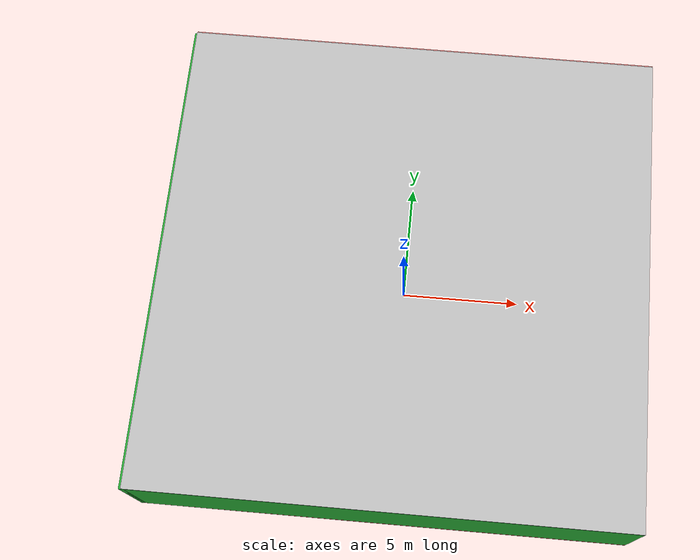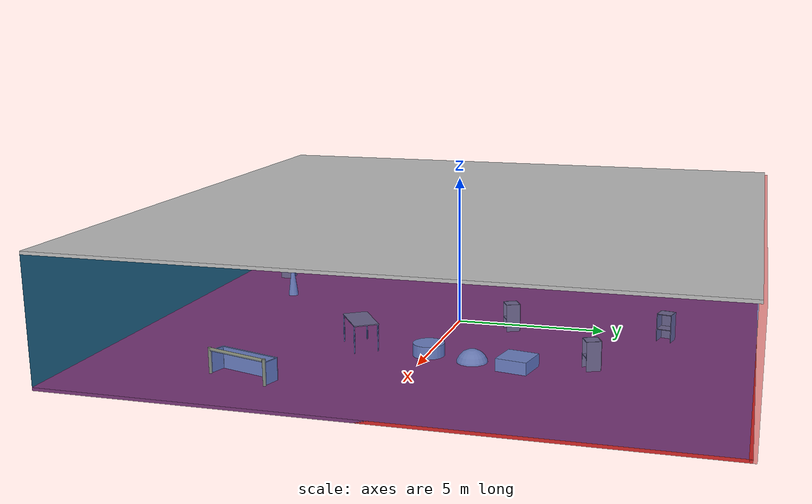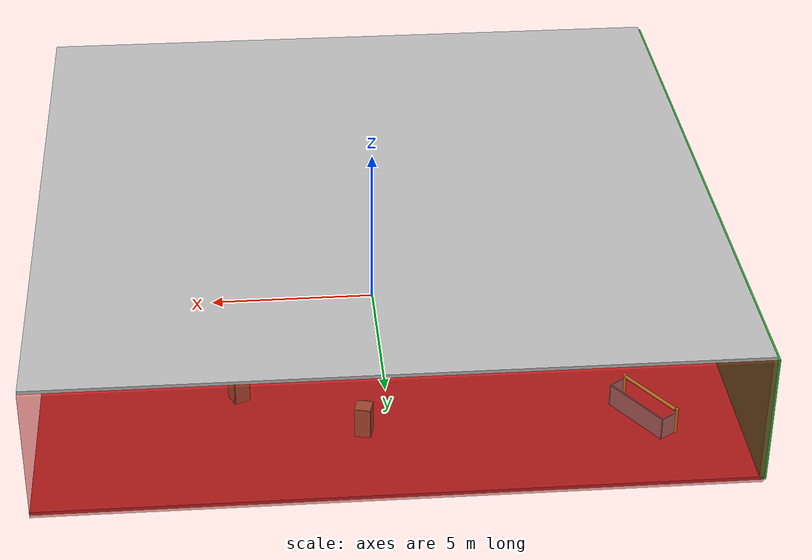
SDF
<sdf version="1.4">
 <world name="default">
  <physics type="ode">
   <max_step_size>0.001</max_step_size>
   <real_time_factor>1</real_time_factor>
   <real_time_update_rate>1000</real_time_update_rate>
   <gravity>0 0 -9.8</gravity>
  </physics>
  <scene><ambient>0.4 0.4 0.4 1</ambient><background>0.7 0.7 0.7 1</background><shadows>1</shadows></scene>
  <model name="Surrounding">
   <static>1</static>
   <link name="Ceiling">
    <collision name="Ceiling_Collision"><geometry><box><size>20 20 0.1</size></box></geometry></collision>
    <visual name="Ceiling_Visual">
     <geometry><box><size>20 20 0.1</size></box></geometry>
     <material>
      <script><uri>file://media/materials/scripts/gazebo.material</uri><name>Gazebo/Pioneer2Body</name></script>
     </material>
    </visual>
    <pose>0 0 4.05 0 0 0</pose>
   </link>
   <link name="Wall_South">
    <collision name="Wall_South_Collision">
     <geometry><box><size>20 0 4</size></box></geometry>
     <pose>0 0 2 0 -0 0</pose>
    </collision>
    <visual name="Wall_South_Visual">
     <pose>0 0 2 0 -0 0</pose>
     <geometry><box><size>20 0 4</size></box></geometry>
     <material>
      <script><uri>file://media/materials/scripts/gazebo.material</uri><name>Gazebo/GreenGlow</name></script>
     </material>
    </visual>
    <velocity_decay><linear>0</linear><angular>0</angular></velocity_decay>
    <pose>0 -10 0 0 -0 0</pose>
   </link>
   <link name="Wall_East">
    <collision name="Wall_21_Collision">
     <geometry><box><size>20 0 4</size></box></geometry>
     <pose>0 0 2 0 -0 0</pose>
    </collision>
    <visual name="Wall_21_Visual">
     <pose>0 0 2 0 -0 0</pose>
     <geometry><box><size>20 0 4</size></box></geometry>
     <material>
      <script><uri>file://media/materials/scripts/gazebo.material</uri><name>Gazebo/BlueTransparent</name></script>
     </material>
    </visual>
    <velocity_decay><linear>0</linear><angular>0</angular></velocity_decay>
    <pose>10 0 0 0 -0 1.5708</pose>
   </link>
   <link name="Wall_North">
    <collision name="Wall_22_Collision">
     <geometry><box><size>20 0.2 4</size></box></geometry>
     <pose>0 0 2 0 -0 0</pose>
    </collision>
    <visual name="Wall_22_Visual">
     <pose>0 0 2 0 -0 0</pose>
     <geometry><box><size>20 0.2 4</size></box></geometry>
     <material>
      <script><uri>file://media/materials/scripts/gazebo.material</uri><name>Gazebo/RedTransparent</name></script>
     </material>
    </visual>
    <velocity_decay><linear>0</linear><angular>0</angular></velocity_decay>
    <pose>0 10 0 0 -0 0</pose>
   </link>
   <link name="Wall_West">
    <collision name="Wall_23_Collision">
     <geometry><box><size>20 0.2 4</size></box></geometry>
     <pose>0 0 2 0 -0 0</pose>
    </collision>
    <visual name="Wall_23_Visual">
     <pose>0 0 2 0 -0 0</pose>
     <geometry><box><size>20 0.2 4</size></box></geometry>
     <material>
      <script><uri>file://media/materials/scripts/gazebo.material</uri><name>Gazebo/GreenGlow</name></script>
     </material>
    </visual>
    <velocity_decay><linear>0</linear><angular>0</angular></velocity_decay>
    <pose>-10 0 0 0 0 -1.5708</pose>
   </link>
   <link name="Ground_link">
    <collision name="collision">
     <pose>0 0 .05 0 -0 0</pose>
     <geometry><box><size>20 20 0.1</size></box></geometry>
    </collision>
    <visual name="visual">
     <pose>0 0 .05 0 -0 0</pose>
     <geometry><box><size>20 20 0.1</size></box></geometry>
     <material>
      <script><uri>file://media/materials/scripts/gazebo.material</uri><name>Gazebo/Red</name></script>
     </material>
    </visual>
   </link>
   <static>1</static>
  </model>
  <spherical_coordinates>
   <surface_model>EARTH_WGS84</surface_model>
   <latitude_deg>0</latitude_deg>
   <longitude_deg>0</longitude_deg>
   <elevation>0</elevation>
   <heading_deg>0</heading_deg>
  </spherical_coordinates>
  <light name="lightball_0" type="diffuse">
   <diffuse>0.8 0.8 0.8 1</diffuse>
   <specular>0.2 0.2 0.2 1</specular>
   <attenuation>
    <range>100</range>
    <constant>0.7</constant>
    <linear>0.01</linear>
    <quadratic>0.001</quadratic>
   </attenuation>
   <direction>-0.5 0.1 -0.9</direction>
   <pose>7.10449277864 2.70223385265 0.726080668567 0 0 0</pose>
  </light>
  <light name="lightball_1" type="diffuse">
   <diffuse>0.8 0.8 0.8 1</diffuse>
   <specular>0.2 0.2 0.2 1</specular>
   <attenuation>
    <range>100</range>
    <constant>0.7</constant>
    <linear>0.01</linear>
    <quadratic>0.001</quadratic>
   </attenuation>
   <direction>-0.5 0.1 -0.9</direction>
   <pose>-8.22732671187 -4.50084197256 3.12336545645 0 0 0</pose>
  </light>
  <light name="lightball_2" type="diffuse">
   <diffuse>0.8 0.8 0.8 1</diffuse>
   <specular>0.2 0.2 0.2 1</specular>
   <attenuation>
    <range>100</range>
    <constant>0.7</constant>
    <linear>0.01</linear>
    <quadratic>0.001</quadratic>
   </attenuation>
   <direction>-0.5 0.1 -0.9</direction>
   <pose>2.96762845135 3.1983005999 3.4917947381 0 0 0</pose>
  </light>
  <light name="lightball_3" type="diffuse">
   <diffuse>0.8 0.8 0.8 1</diffuse>
   <specular>0.2 0.2 0.2 1</specular>
   <attenuation>
    <range>100</range>
    <constant>0.7</constant>
    <linear>0.01</linear>
    <quadratic>0.001</quadratic>
   </attenuation>
   <direction>-0.5 0.1 -0.9</direction>
   <pose>-5.46132399898 2.83840374604 3.4692836711 0 0 0</pose>
  </light>
  <light name="lightball_4" type="diffuse">
   <diffuse>0.8 0.8 0.8 1</diffuse>
   <specular>0.2 0.2 0.2 1</specular>
   <attenuation>
    <range>100</range>
    <constant>0.7</constant>
    <linear>0.01</linear>
    <quadratic>0.001</quadratic>
   </attenuation>
   <direction>-0.5 0.1 -0.9</direction>
   <pose>-0.771886709888 -5.32056299061 1.309485698 0 0 0</pose>
  </light>
  <light name="lightball_5" type="diffuse">
   <diffuse>0.8 0.8 0.8 1</diffuse>
   <specular>0.2 0.2 0.2 1</specular>
   <attenuation>
    <range>100</range>
    <constant>0.7</constant>
    <linear>0.01</linear>
    <quadratic>0.001</quadratic>
   </attenuation>
   <direction>-0.5 0.1 -0.9</direction>
   <pose>8.23537288631 -5.06832515721 3.71305792291 0 0 0</pose>
  </light>
  <light name="lightball_6" type="diffuse">
   <diffuse>0.8 0.8 0.8 1</diffuse>
   <specular>0.2 0.2 0.2 1</specular>
   <attenuation>
    <range>100</range>
    <constant>0.7</constant>
    <linear>0.01</linear>
    <quadratic>0.001</quadratic>
   </attenuation>
   <direction>-0.5 0.1 -0.9</direction>
   <pose>7.04372313032 -5.33193953957 2.60777045565 0 0 0</pose>
  </light>
  <include>
   <uri>model://construction_cone</uri>
   <pose>-8.15467688283 -6.73667086 0 0 0 1.92463062166</pose>
  </include>
  <include>
   <uri>model://textured_shapes</uri>
   <pose>-8.03837268109 -3.8044823952 0 0 0 0.0426519600063</pose>
  </include>
  <include>
   <uri>model://robocup_3Dsim_goal</uri>
   <pose>-7.41877978516 6.92505194974 0 0 0 0.583380978979</pose>
  </include>
  <include><uri>model://cabinet</uri><pose>-3.97257215995 -8.11064330953 0 0 0 1.62929238219</pose></include>
  <include><uri>model://cabinet</uri><pose>-5.04085827022 -1.63940954382 0 0 0 1.95110653145</pose></include>
  <include>
   <uri>model://construction_cone</uri>
   <pose>-1.4266903771 -6.83148236206 0 0 0 0.541593860421</pose>
  </include>
  <include><uri>model://cabinet</uri><pose>0.876137278302 2.02507793625 0 0 0 2.02816598291</pose></include>
  <include><uri>model://cabinet</uri><pose>0.792809342509 7.1260710454 0 0 0 2.89077302552</pose></include>
  <include><uri>model://table</uri><pose>3.9201200227 -2.2213863612 0 0 0 0.59685241344</pose></include>
  <include>
   <uri>model://textured_shapes</uri>
   <pose>4.52000332645 1.59446649865 0 0 0 2.94188149871</pose>
  </include>
  <include><uri>model://cabinet</uri><pose>4.26774361977 5.21857394984 0 0 0 1.99104820673</pose></include>
  <include>
   <uri>model://robocup_3Dsim_goal</uri>
   <pose>7.8507366289 -4.63353463169 0 0 0 2.84739623629</pose>
  </include>
 </world>
</sdf>

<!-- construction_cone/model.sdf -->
<sdf version="1.5">
  <model name="Construction Cone">
    <link name="link">
      <collision name="collision">
        <geometry>
          <mesh>
            <scale>10 10 10</scale>
            <uri>file://isr-testbed/construction_cone/meshes/construction_cone.dae</uri>
          </mesh>
        </geometry>
      </collision>
      <visual name="visual">
        <geometry>
          <mesh>
            <scale>10 10 10</scale>
            <uri>file://isr-testbed/construction_cone/meshes/construction_cone.dae</uri>
          </mesh>
        </geometry>
      </visual>
    </link>
  </model>
</sdf>

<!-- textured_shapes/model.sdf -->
<sdf version="1.6">
  <model name="textured_shapes">
    <pose>0 0 0.5 0 0 0</pose>
    <link name="box">
      <pose>0 -1.5 0 0 0 0</pose>
      <collision name="collision">
        <geometry>
          <box>
            <size>1 1 1</size>
          </box>
        </geometry>
      </collision>
      <visual name="visual">
        <geometry>
          <box>
            <size>1 1 1</size>
          </box>
        </geometry>
        <material>
          <script>
            <uri>model://../model_source/models/textured_shapes/materials/scripts</uri>
            <uri>model://../model_source/models/textured_shapes/materials/textures</uri>
            <name>TexturedShape/Squares</name>
          </script>
        </material>
      </visual>
    </link>
    <link name="sphere">
      <collision name="collision">
        <geometry>
          <sphere>
            <radius>0.5</radius>
          </sphere>
        </geometry>
      </collision>
      <visual name="visual">
        <geometry>
          <sphere>
            <radius>0.5</radius>
          </sphere>
        </geometry>
        <material>
          <script>
            <uri>model://../model_source/models/textured_shapes/materials/scripts</uri>
            <uri>model://../model_source/models/textured_shapes/materials/textures</uri>
            <name>TexturedShape/Squares</name>
          </script>
        </material>
      </visual>
    </link>
    <link name="cylinder">
      <pose>0 1.5 0 0 0 0</pose>
      <collision name="collision">
        <geometry>
          <cylinder>
            <radius>0.5</radius>
            <length>1</length>
          </cylinder>
        </geometry>
      </collision>
      <visual name="visual">
        <geometry>
          <cylinder>
            <radius>0.5</radius>
            <length>1</length>
          </cylinder>
        </geometry>
        <material>
          <script>
            <uri>model://../model_source/models/textured_shapes/materials/scripts</uri>
            <uri>model://../model_source/models/textured_shapes/materials/textures</uri>
            <name>TexturedShape/Squares</name>
          </script>
        </material>
      </visual>
    </link>
  </model>
</sdf>

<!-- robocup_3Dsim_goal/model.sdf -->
<sdf version="1.5">
  <model name="robocup_3d_goal">
    <static>true</static>
    <link name="left_post">
      <pose>0 1.05 0.45 0 0 0</pose>
      <collision name="collision">
        <geometry>
          <cylinder>
            <radius>0.05</radius>
            <length>0.9</length>
          </cylinder>
        </geometry>
      </collision>
      <visual name="visual">
        <geometry>
          <cylinder>
            <radius>0.05</radius>
            <length>0.9</length>
          </cylinder>
        </geometry>
        <material>
          <script>
            <uri>file://media/materials/scripts/gazebo.material</uri>
            <name>Gazebo/ZincYellow</name>
          </script>
        </material>
      </visual>
    </link>
    <link name="left_support_horiz_lower">
      <pose>0.30 1.05 0.01 0 0 0</pose>
      <collision name="collision">
        <geometry>
          <box>
            <size>0.50 0.02 0.02</size>
          </box>
        </geometry>
      </collision>
      <visual name="visual">
        <geometry>
          <box>
            <size>0.50 0.02 0.02</size>
          </box>
        </geometry>
        <material>
          <script>
            <uri>file://media/materials/scripts/gazebo.material</uri>
            <name>Gazebo/White</name>
          </script>
        </material>
      </visual>
    </link>
    <link name="left_support_horiz_upper">
      <pose>0.30 1.05 0.79 0 0 0</pose>
      <collision name="collision">
        <geometry>
          <box>
            <size>0.50 0.02 0.02</size>
          </box>
        </geometry>
      </collision>
      <visual name="visual">
        <geometry>
          <box>
            <size>0.50 0.02 0.02</size>
          </box>
        </geometry>
        <material>
          <script>
            <uri>file://media/materials/scripts/gazebo.material</uri>
            <name>Gazebo/White</name>
          </script>
        </material>
      </visual>
    </link>
    <link name="left_support_vertical">
      <pose>0.56 1.05 0.4 0 1.5708 0</pose>
      <collision name="collision">
        <geometry>
          <box>
            <size>0.80 0.02 0.02</size>
          </box>
        </geometry>
      </collision>
      <visual name="visual">
        <geometry>
          <box>
            <size>0.80 0.02 0.02</size>
          </box>
        </geometry>
        <material>
          <script>
            <uri>file://media/materials/scripts/gazebo.material</uri>
            <name>Gazebo/White</name>
          </script>
        </material>
      </visual>
    </link>
    <link name="right_support_horiz_lower">
      <pose>0.30 -1.05 0.01 0 0 0</pose>
      <collision name="collision">
        <geometry>
          <box>
            <size>0.50 0.02 0.02</size>
          </box>
        </geometry>
      </collision>
      <visual name="visual">
        <geometry>
          <box>
            <size>0.50 0.02 0.02</size>
          </box>
        </geometry>
        <material>
          <script>
            <uri>file://media/materials/scripts/gazebo.material</uri>
            <name>Gazebo/White</name>
          </script>
        </material>
      </visual>
    </link>
    <link name="right_support_horiz_upper">
      <pose>0.30 -1.05 0.79 0 0 0</pose>
      <collision name="collision">
        <geometry>
          <box>
            <size>0.50 0.02 0.02</size>
          </box>
        </geometry>
      </collision>
      <visual name="visual">
        <geometry>
          <box>
            <size>0.50 0.02 0.02</size>
          </box>
        </geometry>
        <material>
          <script>
            <uri>file://media/materials/scripts/gazebo.material</uri>
            <name>Gazebo/White</name>
          </script>
        </material>
      </visual>
    </link>
    <link name="right_support_vertical">
      <pose>0.56 -1.05 0.4 0 1.5708 0</pose>
      <collision name="collision">
        <geometry>
          <box>
            <size>0.80 0.02 0.02</size>
          </box>
        </geometry>
      </collision>
      <visual name="visual">
        <geometry>
          <box>
            <size>0.80 0.02 0.02</size>
          </box>
        </geometry>
        <material>
          <script>
            <uri>file://media/materials/scripts/gazebo.material</uri>
            <name>Gazebo/White</name>
          </script>
        </material>
      </visual>
    </link>
    <link name="center_support_horiz_lower">
      <pose>0.56 0 0.01 0 1.5708 0</pose>
      <collision name="collision">
        <geometry>
          <box>
            <size>0.02 2.08 0.02</size>
          </box>
        </geometry>
      </collision>
      <visual name="visual">
        <geometry>
          <box>
            <size>0.02 2.08 0.02</size>
          </box>
        </geometry>
        <material>
          <script>
            <uri>file://media/materials/scripts/gazebo.material</uri>
            <name>Gazebo/White</name>
          </script>
        </material>
      </visual>
    </link>
    <link name="center_support_horiz_upper">
      <pose>0.56 0 0.79 0 1.5708 0</pose>
      <collision name="collision">
        <geometry>
          <box>
            <size>0.02 2.08 0.02</size>
          </box>
        </geometry>
      </collision>
      <visual name="visual">
        <geometry>
          <box>
            <size>0.02 2.08 0.02</size>
          </box>
        </geometry>
        <material>
          <script>
            <uri>file://media/materials/scripts/gazebo.material</uri>
            <name>Gazebo/White</name>
          </script>
        </material>
      </visual>
    </link>
    <link name="right_post">
      <pose>0 -1.05 0.45 0 0 0</pose>
      <collision name="collision">
        <geometry>
          <cylinder>
            <radius>0.05</radius>
            <length>0.9</length>
          </cylinder>
        </geometry>
      </collision>
      <visual name="visual">
        <geometry>
          <cylinder>
            <radius>0.05</radius>
            <length>0.9</length>
          </cylinder>
        </geometry>
        <material>
          <script>
            <uri>file://media/materials/scripts/gazebo.material</uri>
            <name>Gazebo/ZincYellow</name>
          </script>
        </material>
      </visual>
    </link>
    <link name="crossbar">
      <pose>0 0 0.85 1.57 1.57 0</pose>
      <collision name="collision">
        <geometry>
          <cylinder>
            <radius>0.05</radius>
            <length>2.0</length>
          </cylinder>
        </geometry>
      </collision>
      <visual name="visual">
        <geometry>
          <cylinder>
            <radius>0.05</radius>
            <length>2.0</length>
          </cylinder>
        </geometry>
        <material>
          <script>
            <uri>file://media/materials/scripts/gazebo.material</uri>
            <name>Gazebo/ZincYellow</name>
          </script>
        </material>
      </visual>
    </link>
    <link name="center_net">
      <pose>0.56 0 0.40 0 0 0</pose>
      <collision name="collision">
        <geometry>
          <box>
            <size>0.01 2.1 0.80</size>
          </box>
        </geometry>
      </collision>
      <visual name="visual">
        <geometry>
          <box>
            <size>0.01 2.1 0.80</size>
          </box>
        </geometry>
        <material>
          <script>
            <uri>model://../model_source/models/robocup09_spl_field/materials/scripts/</uri>
            <uri>model://../model_source/models/robocup09_spl_field/materials/textures/</uri>
            <name>RoboCup/Net</name>
          </script>
        </material>
      </visual>
    </link>
    <link name="left_net">
      <pose>0.30 1.05 0.40 0 0 0</pose>
      <collision name="collision">
        <geometry>
          <box>
            <size>0.50 0.01 0.76</size>
          </box>
        </geometry>
      </collision>
      <visual name="visual">
        <geometry>
          <box>
            <size>0.50 0.01 0.76</size>
          </box>
        </geometry>
        <material>
          <script>
            <uri>model://../model_source/models/robocup09_spl_field/materials/scripts/</uri>
            <uri>model://../model_source/models/robocup09_spl_field/materials/textures/</uri>
            <name>RoboCup/Net</name>
          </script>
        </material>
      </visual>
    </link>
    <link name="right_net">
      <pose>0.30 -1.05 0.40 0 0 0</pose>
      <collision name="collision">
        <geometry>
          <box>
            <size>0.50 0.01 0.76</size>
          </box>
        </geometry>
      </collision>
      <visual name="visual">
        <geometry>
          <box>
            <size>0.50 0.01 0.76</size>
          </box>
        </geometry>
        <material>
          <script>
            <uri>model://../model_source/models/robocup09_spl_field/materials/scripts/</uri>
            <uri>model://../model_source/models/robocup09_spl_field/materials/textures/</uri>
            <name>RoboCup/Net</name>
          </script>
        </material>
      </visual>
    </link>
  </model>
</sdf>

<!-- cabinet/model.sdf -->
<sdf version="1.5">
  <model name="cabinet">
    <static>true</static>
    <link name="cabinet_bottom_plate">
      <inertial>
        <pose>0 0 -1 0 0 0</pose>
        <inertia>
          <ixx>2.050000</ixx>
          <ixy>0</ixy>
          <ixz>0</ixz>
          <iyy>2.050000</iyy>
          <iyz>0</iyz>
          <izz>2.050000</izz>
        </inertia>
        <mass>25.000000</mass>
      </inertial>
      <collision name="cabinet_bottom_plate_geom">
        <pose>0 0 0.010000 0 0 0</pose>
        <geometry>
          <box>
            <size>0.450000 0.450000 0.020000</size>
          </box>
        </geometry>
      </collision>
      <visual name="cabinet_bottom_plate_geom_visual">
        <pose>0 0 0.010000 0 0 0</pose>
        <geometry>
          <box>
            <size>0.450000 0.450000 0.020000</size>
          </box>
        </geometry>
        <material>
          <script>
            <uri>model://media/materials/scripts/gazebo.material</uri>
            <name>Gazebo/Wood</name>
          </script>
        </material>
      </visual>
      <collision name="cabinet_bottom_plate_geom_cabinet_back_plate">
        <pose>0.235000 0 0.510000 0 0 0</pose>
        <geometry>
          <box>
            <size>0.020000 0.450000 1.020000</size>
          </box>
        </geometry>
      </collision>
      <visual name="cabinet_bottom_plate_geom_cabinet_back_plate_visual">
        <pose>0.235000 0 0.510000 0 0 0</pose>
        <geometry>
          <box>
            <size>0.020000 0.450000 1.020000</size>
          </box>
        </geometry>
        <material>
          <script>
            <uri>model://media/materials/scripts/gazebo.material</uri>
            <name>Gazebo/Wood</name>
          </script>
        </material>
      </visual>
      <collision name="cabinet_bottom_plate_geom_cabinet_left_plate">
        <pose>0 0.235000 0.510000 0 0 0</pose>
        <geometry>
          <box>
            <size>0.450000 0.020000 1.020000</size>
          </box>
        </geometry>
      </collision>
      <visual name="cabinet_bottom_plate_geom_cabinet_left_plate_visual">
        <pose>0 0.235000 0.510000 0 0 0</pose>
        <geometry>
          <box>
            <size>0.450000 0.020000 1.020000</size>
          </box>
        </geometry>
        <material>
          <script>
            <uri>model://media/materials/scripts/gazebo.material</uri>
            <name>Gazebo/Wood</name>
          </script>
        </material>
      </visual>
      <collision name="cabinet_bottom_plate_geom_cabinet_middle_plate">
        <pose>0 0 0.510000 0 0 0</pose>
        <geometry>
          <box>
            <size>0.450000 0.450000 0.020000</size>
          </box>
        </geometry>
      </collision>
      <visual name="cabinet_bottom_plate_geom_cabinet_middle_plate_visual">
        <pose>0 0 0.510000 0 0 0</pose>
        <geometry>
          <box>
            <size>0.450000 0.450000 0.020000</size>
          </box>
        </geometry>
        <material>
          <script>
            <uri>model://media/materials/scripts/gazebo.material</uri>
            <name>Gazebo/Wood</name>
          </script>
        </material>
      </visual>
      <collision name="cabinet_bottom_plate_geom_cabinet_right_plate">
        <pose>0 -0.235000 0.510000 0 0 0</pose>
        <geometry>
          <box>
            <size>0.450000 0.020000 1.020000</size>
          </box>
        </geometry>
      </collision>
      <visual name="cabinet_bottom_plate_geom_cabinet_right_plate_visual">
        <pose>0 -0.235000 0.510000 0 0 0</pose>
        <geometry>
          <box>
            <size>0.450000 0.020000 1.020000</size>
          </box>
        </geometry>
        <material>
          <script>
            <uri>model://media/materials/scripts/gazebo.material</uri>
            <name>Gazebo/Wood</name>
          </script>
        </material>
      </visual>
      <collision name="cabinet_bottom_plate_geom_cabinet_top_plate">
        <pose>0 0 1.010000 0 0 0</pose>
        <geometry>
          <box>
            <size>0.450000 0.450000 0.020000</size>
          </box>
        </geometry>
      </collision>
      <visual name="cabinet_bottom_plate_geom_cabinet_top_plate_visual">
        <pose>0 0 1.010000 0 0 0</pose>
        <geometry>
          <box>
            <size>0.450000 0.450000 0.020000</size>
          </box>
        </geometry>
        <material>
          <script>
            <uri>model://media/materials/scripts/gazebo.material</uri>
            <name>Gazebo/Wood</name>
          </script>
        </material>
      </visual>
    </link>
  </model>
</sdf>

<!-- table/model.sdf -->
<sdf version="1.5">
  <model name="table">
    <static>true</static>
    <link name="link">
      <collision name="surface">
        <pose>0 0 1.0 0 0 0</pose>
        <geometry>
          <box>
            <size>1.5 0.8 0.03</size>
          </box>
        </geometry>
        <surface>
          <friction>
            <ode>
              <mu>0.6</mu>
              <mu2>0.6</mu2>
            </ode>
          </friction>
        </surface>
      </collision>
      <visual name="visual1">
        <pose>0 0 1.0 0 0 0</pose>
        <geometry>
          <box>
            <size>1.5 0.8 0.03</size>
          </box>
        </geometry>
        <material>
          <script>
            <uri>model://media/materials/scripts/gazebo.material</uri>
            <name>Gazebo/Wood</name>
          </script>
        </material>
      </visual>
      <collision name="front_left_leg">
        <pose>0.68 0.38 0.5 0 0 0</pose>
        <geometry>
          <cylinder>
            <radius>0.02</radius>
            <length>1.0</length>
          </cylinder>
        </geometry>
      </collision>
      <visual name="front_left_leg">
        <pose>0.68 0.38 0.5 0 0 0</pose>
        <geometry>
          <cylinder>
            <radius>0.02</radius>
            <length>1.0</length>
          </cylinder>
        </geometry>
        <material>
          <script>
            <uri>model://media/materials/scripts/gazebo.material</uri>
            <name>Gazebo/Grey</name>
          </script>
        </material>
      </visual>
      <collision name="front_right_leg">
        <pose>0.68 -0.38 0.5 0 0 0</pose>
        <geometry>
          <cylinder>
            <radius>0.02</radius>
            <length>1.0</length>
          </cylinder>
        </geometry>
      </collision>
      <visual name="front_right_leg">
        <pose>0.68 -0.38 0.5 0 0 0</pose>
        <geometry>
          <cylinder>
            <radius>0.02</radius>
            <length>1.0</length>
          </cylinder>
        </geometry>
        <material>
          <script>
            <uri>model://media/materials/scripts/gazebo.material</uri>
            <name>Gazebo/Grey</name>
          </script>
        </material>
      </visual>
      <collision name="back_right_leg">
        <pose>-0.68 -0.38 0.5 0 0 0</pose>
        <geometry>
          <cylinder>
            <radius>0.02</radius>
            <length>1.0</length>
          </cylinder>
        </geometry>
      </collision>
      <visual name="back_right_leg">
        <pose>-0.68 -0.38 0.5 0 0 0</pose>
        <geometry>
          <cylinder>
            <radius>0.02</radius>
            <length>1.0</length>
          </cylinder>
        </geometry>
        <material>
          <script>
            <uri>model://media/materials/scripts/gazebo.material</uri>
            <name>Gazebo/Grey</name>
          </script>
        </material>
      </visual>
      <collision name="back_left_leg">
        <pose>-0.68 0.38 0.5 0 0 0</pose>
        <geometry>
          <cylinder>
            <radius>0.02</radius>
            <length>1.0</length>
          </cylinder>
        </geometry>
      </collision>
      <visual name="back_left_leg">
        <pose>-0.68 0.38 0.5 0 0 0</pose>
        <geometry>
          <cylinder>
            <radius>0.02</radius>
            <length>1.0</length>
          </cylinder>
        </geometry>
        <material>
          <script>
            <uri>model://media/materials/scripts/gazebo.material</uri>
            <name>Gazebo/Grey</name>
          </script>
        </material>
      </visual>
    </link>
  </model>
</sdf>
